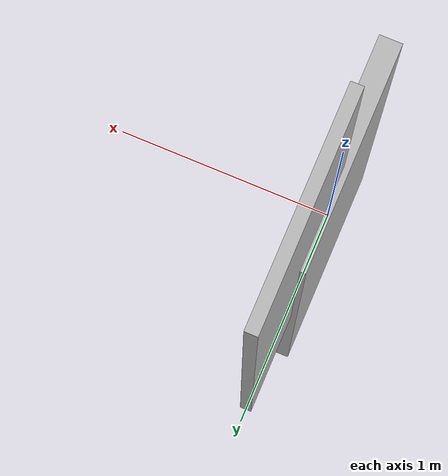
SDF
<?xml version="1.0" ?>
<sdf version="1.6">
  <model name="hinged_door">
    <link name="frame">
      <pose frame="">0 0 0 0 0 0</pose>
      <visual name="frame_visual">
        <geometry>
          <box>
            <size>0.1 1.0 2.0</size>
          </box>
        </geometry>
      </visual>
    </link>
    <link name="door">
      <pose frame="">0 0.5 1.0 0 0 0</pose>
      <visual name="door_visual">
        <geometry>
          <box>
            <size>0.05 0.9 1.9</size>
          </box>
        </geometry>
      </visual>
    </link>
    <joint name="hinge" type="revolute">
      <parent>frame</parent>
      <child>door</child>
      <pose frame="">0 -0.45 0 0 1.5707963267948966 0</pose>
      <axis>
        <use_parent_model_frame>0</use_parent_model_frame>
        <xyz>1 0 0</xyz>
        <limit>
          <lower>-1.4</lower>
          <upper>1.4</upper>
          <velocity>2.5</velocity>
        </limit>
        <dynamics>
          <damping>0.7</damping>
          <friction>0.3</friction>
        </dynamics>
      </axis>
    </joint>
  </model>
</sdf>
